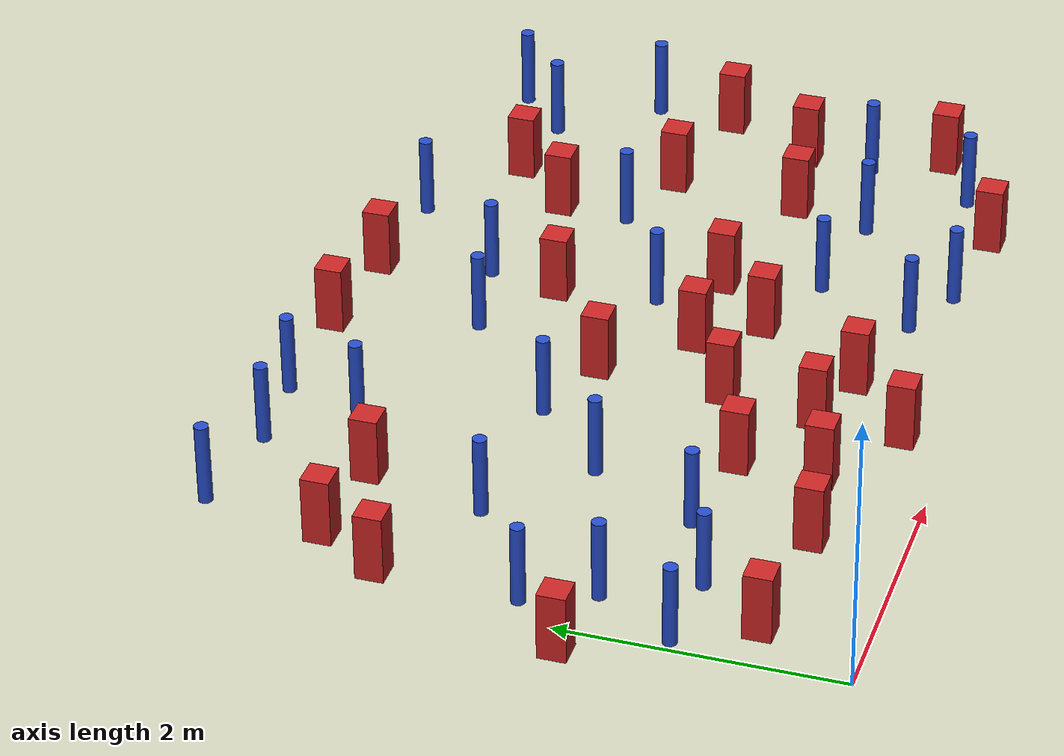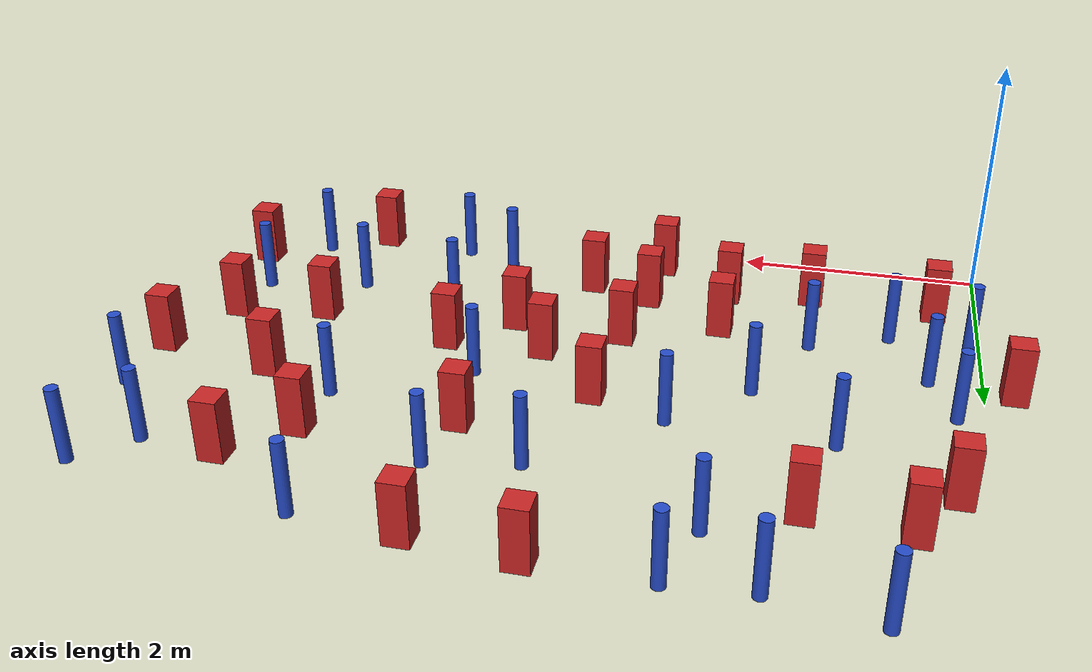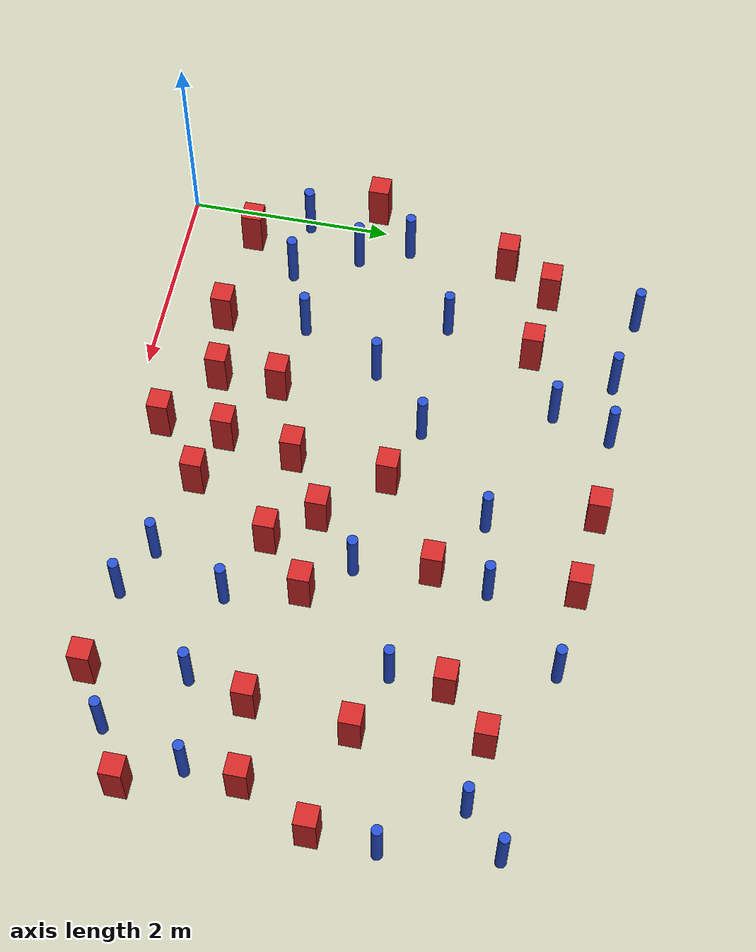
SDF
<sdf version="1.6">
 <model name="dense_74">
  <model name="square_post_obstacle5">
   <static>true</static>
   <pose>3.76848859604 4.4891068602 1.91545236811e-07 -7.35059704564e-06 1.12565212e-07 2.39332434364e-05</pose>
   <link name="link">
    <pose>0 0 0.25 0 -0 0</pose>
    <inertial>
     <mass>100</mass>
     <inertia>
      <ixx>0.166667</ixx>
      <ixy>0</ixy>
      <ixz>0</ixz>
      <iyy>0.166667</iyy>
      <iyz>0</iyz>
      <izz>0.166667</izz>
     </inertia>
    </inertial>
    <collision name="collision"><geometry><box><size>.2 .2 .5</size></box></geometry></collision>
    <visual name="visual">
     <geometry><box><size>.2 .2 .5</size></box></geometry>
     <material>
      <script><name>Gazebo/Red</name><uri>file://media/materials/scripts/gazebo.material</uri></script>
     </material>
    </visual>
   </link>
  </model>
  <model name="pole_obstacle11">
   <static>true</static>
   <pose>5.98170943575 3.84576997254 7.38925637345e-09 -8.47170692798e-08 1.24976764937e-08 -1.74513093023e-07</pose>
   <link name="link">
    <pose>0 0 0.3 0 -0 0</pose>
    <inertial>
     <mass>1</mass>
     <inertia><ixx>0.145833</ixx><ixy>0</ixy><ixz>0</ixz><iyy>0.145833</iyy><iyz>0</iyz><izz>0.125</izz></inertia>
    </inertial>
    <collision name="collision">
     <geometry><cylinder><radius>0.05</radius><length>.6</length></cylinder></geometry>
    </collision>
    <visual name="visual">
     <geometry><cylinder><radius>0.05</radius><length>.6</length></cylinder></geometry>
     <material>
      <script><name>Gazebo/Blue</name><uri>file://media/materials/scripts/gazebo.material</uri></script>
     </material>
    </visual>
   </link>
  </model>
  <model name="square_post_obstacle8">
   <static>true</static>
   <pose>0.52185416256 3.75010447684 1.91545236811e-07 -7.35059704564e-06 1.12565212e-07 2.39332434364e-05</pose>
   <link name="link">
    <pose>0 0 0.25 0 -0 0</pose>
    <inertial>
     <mass>100</mass>
     <inertia>
      <ixx>0.166667</ixx>
      <ixy>0</ixy>
      <ixz>0</ixz>
      <iyy>0.166667</iyy>
      <iyz>0</iyz>
      <izz>0.166667</izz>
     </inertia>
    </inertial>
    <collision name="collision"><geometry><box><size>.2 .2 .5</size></box></geometry></collision>
    <visual name="visual">
     <geometry><box><size>.2 .2 .5</size></box></geometry>
     <material>
      <script><name>Gazebo/Red</name><uri>file://media/materials/scripts/gazebo.material</uri></script>
     </material>
    </visual>
   </link>
  </model>
  <model name="square_post_obstacle13">
   <static>true</static>
   <pose>4.9184155626 3.47502278564 1.91545236811e-07 -7.35059704564e-06 1.12565212e-07 2.39332434364e-05</pose>
   <link name="link">
    <pose>0 0 0.25 0 -0 0</pose>
    <inertial>
     <mass>100</mass>
     <inertia>
      <ixx>0.166667</ixx>
      <ixy>0</ixy>
      <ixz>0</ixz>
      <iyy>0.166667</iyy>
      <iyz>0</iyz>
      <izz>0.166667</izz>
     </inertia>
    </inertial>
    <collision name="collision"><geometry><box><size>.2 .2 .5</size></box></geometry></collision>
    <visual name="visual">
     <geometry><box><size>.2 .2 .5</size></box></geometry>
     <material>
      <script><name>Gazebo/Red</name><uri>file://media/materials/scripts/gazebo.material</uri></script>
     </material>
    </visual>
   </link>
  </model>
  <model name="pole_obstacle20">
   <static>true</static>
   <pose>1.07378791365 2.82501604098 7.38925637345e-09 -8.47170692799e-08 1.24976765053e-08 -1.74513093017e-07</pose>
   <link name="link">
    <pose>0 0 0.3 0 -0 0</pose>
    <inertial>
     <mass>1</mass>
     <inertia><ixx>0.145833</ixx><ixy>0</ixy><ixz>0</ixz><iyy>0.145833</iyy><iyz>0</iyz><izz>0.125</izz></inertia>
    </inertial>
    <collision name="collision">
     <geometry><cylinder><radius>0.05</radius><length>.6</length></cylinder></geometry>
    </collision>
    <visual name="visual">
     <geometry><cylinder><radius>0.05</radius><length>.6</length></cylinder></geometry>
     <material>
      <script><name>Gazebo/Blue</name><uri>file://media/materials/scripts/gazebo.material</uri></script>
     </material>
    </visual>
   </link>
  </model>
  <model name="pole_obstacle25">
   <static>true</static>
   <pose>4.0653053094 0.614794969996 7.38925637345e-09 -8.47170692799e-08 1.24976765038e-08 -1.74513093018e-07</pose>
   <link name="link">
    <pose>0 0 0.3 0 -0 0</pose>
    <inertial>
     <mass>1</mass>
     <inertia><ixx>0.145833</ixx><ixy>0</ixy><ixz>0</ixz><iyy>0.145833</iyy><iyz>0</iyz><izz>0.125</izz></inertia>
    </inertial>
    <collision name="collision">
     <geometry><cylinder><radius>0.05</radius><length>.6</length></cylinder></geometry>
    </collision>
    <visual name="visual">
     <geometry><cylinder><radius>0.05</radius><length>.6</length></cylinder></geometry>
     <material>
      <script><name>Gazebo/Blue</name><uri>file://media/materials/scripts/gazebo.material</uri></script>
     </material>
    </visual>
   </link>
  </model>
  <model name="square_post_obstacle24">
   <static>true</static>
   <pose>0.238904374398 3.28265726536 1.91545236811e-07 -7.35059704564e-06 1.12565212e-07 2.39332434364e-05</pose>
   <link name="link">
    <pose>0 0 0.25 0 -0 0</pose>
    <inertial>
     <mass>100</mass>
     <inertia>
      <ixx>0.166667</ixx>
      <ixy>0</ixy>
      <ixz>0</ixz>
      <iyy>0.166667</iyy>
      <iyz>0</iyz>
      <izz>0.166667</izz>
     </inertia>
    </inertial>
    <collision name="collision"><geometry><box><size>.2 .2 .5</size></box></geometry></collision>
    <visual name="visual">
     <geometry><box><size>.2 .2 .5</size></box></geometry>
     <material>
      <script><name>Gazebo/Red</name><uri>file://media/materials/scripts/gazebo.material</uri></script>
     </material>
    </visual>
   </link>
  </model>
  <model name="pole_obstacle33">
   <static>true</static>
   <pose>3.89130578524 2.43610695451 7.38925637345e-09 -8.47170692798e-08 1.24976764939e-08 -1.74513093025e-07</pose>
   <link name="link">
    <pose>0 0 0.3 0 -0 0</pose>
    <inertial>
     <mass>1</mass>
     <inertia><ixx>0.145833</ixx><ixy>0</ixy><ixz>0</ixz><iyy>0.145833</iyy><iyz>0</iyz><izz>0.125</izz></inertia>
    </inertial>
    <collision name="collision">
     <geometry><cylinder><radius>0.05</radius><length>.6</length></cylinder></geometry>
    </collision>
    <visual name="visual">
     <geometry><cylinder><radius>0.05</radius><length>.6</length></cylinder></geometry>
     <material>
      <script><name>Gazebo/Blue</name><uri>file://media/materials/scripts/gazebo.material</uri></script>
     </material>
    </visual>
   </link>
  </model>
  <model name="pole_obstacle34">
   <static>true</static>
   <pose>3.20870922685 3.55319952448 7.38925637345e-09 -8.47170692798e-08 1.24976764939e-08 -1.74513093025e-07</pose>
   <link name="link">
    <pose>0 0 0.3 0 -0 0</pose>
    <inertial>
     <mass>1</mass>
     <inertia><ixx>0.145833</ixx><ixy>0</ixy><ixz>0</ixz><iyy>0.145833</iyy><iyz>0</iyz><izz>0.125</izz></inertia>
    </inertial>
    <collision name="collision">
     <geometry><cylinder><radius>0.05</radius><length>.6</length></cylinder></geometry>
    </collision>
    <visual name="visual">
     <geometry><cylinder><radius>0.05</radius><length>.6</length></cylinder></geometry>
     <material>
      <script><name>Gazebo/Blue</name><uri>file://media/materials/scripts/gazebo.material</uri></script>
     </material>
    </visual>
   </link>
  </model>
  <model name="square_post_obstacle39">
   <static>true</static>
   <pose>2.0872839718 0.744691946764 1.91545236811e-07 -7.35059704564e-06 1.12565212e-07 2.39332434364e-05</pose>
   <link name="link">
    <pose>0 0 0.25 0 -0 0</pose>
    <inertial>
     <mass>100</mass>
     <inertia>
      <ixx>0.166667</ixx>
      <ixy>0</ixy>
      <ixz>0</ixz>
      <iyy>0.166667</iyy>
      <iyz>0</iyz>
      <izz>0.166667</izz>
     </inertia>
    </inertial>
    <collision name="collision"><geometry><box><size>.2 .2 .5</size></box></geometry></collision>
    <visual name="visual">
     <geometry><box><size>.2 .2 .5</size></box></geometry>
     <material>
      <script><name>Gazebo/Red</name><uri>file://media/materials/scripts/gazebo.material</uri></script>
     </material>
    </visual>
   </link>
  </model>
  <model name="pole_obstacle56">
   <static>true</static>
   <pose>2.32313511469 2.78692863247 7.38925637345e-09 -8.47170692798e-08 1.24976764939e-08 -1.74513093025e-07</pose>
   <link name="link">
    <pose>0 0 0.3 0 -0 0</pose>
    <inertial>
     <mass>1</mass>
     <inertia><ixx>0.145833</ixx><ixy>0</ixy><ixz>0</ixz><iyy>0.145833</iyy><iyz>0</iyz><izz>0.125</izz></inertia>
    </inertial>
    <collision name="collision">
     <geometry><cylinder><radius>0.05</radius><length>.6</length></cylinder></geometry>
    </collision>
    <visual name="visual">
     <geometry><cylinder><radius>0.05</radius><length>.6</length></cylinder></geometry>
     <material>
      <script><name>Gazebo/Blue</name><uri>file://media/materials/scripts/gazebo.material</uri></script>
     </material>
    </visual>
   </link>
  </model>
  <model name="pole_obstacle57">
   <static>true</static>
   <pose>5.84016304088 0.595460943775 7.38925637345e-09 -8.47170692799e-08 1.24976765038e-08 -1.74513093018e-07</pose>
   <link name="link">
    <pose>0 0 0.3 0 -0 0</pose>
    <inertial>
     <mass>1</mass>
     <inertia><ixx>0.145833</ixx><ixy>0</ixy><ixz>0</ixz><iyy>0.145833</iyy><iyz>0</iyz><izz>0.125</izz></inertia>
    </inertial>
    <collision name="collision">
     <geometry><cylinder><radius>0.05</radius><length>.6</length></cylinder></geometry>
    </collision>
    <visual name="visual">
     <geometry><cylinder><radius>0.05</radius><length>.6</length></cylinder></geometry>
     <material>
      <script><name>Gazebo/Blue</name><uri>file://media/materials/scripts/gazebo.material</uri></script>
     </material>
    </visual>
   </link>
  </model>
  <model name="square_post_obstacle45">
   <static>true</static>
   <pose>2.95661262917 4.55752413526 1.91545236811e-07 -7.35059704564e-06 1.12565212e-07 2.39332434364e-05</pose>
   <link name="link">
    <pose>0 0 0.25 0 -0 0</pose>
    <inertial>
     <mass>100</mass>
     <inertia>
      <ixx>0.166667</ixx>
      <ixy>0</ixy>
      <ixz>0</ixz>
      <iyy>0.166667</iyy>
      <iyz>0</iyz>
      <izz>0.166667</izz>
     </inertia>
    </inertial>
    <collision name="collision"><geometry><box><size>.2 .2 .5</size></box></geometry></collision>
    <visual name="visual">
     <geometry><box><size>.2 .2 .5</size></box></geometry>
     <material>
      <script><name>Gazebo/Red</name><uri>file://media/materials/scripts/gazebo.material</uri></script>
     </material>
    </visual>
   </link>
  </model>
  <model name="pole_obstacle61">
   <static>true</static>
   <pose>2.0718901959 4.56500717576 7.38925637345e-09 -8.47170692798e-08 1.24976765033e-08 -1.74513093019e-07</pose>
   <link name="link">
    <pose>0 0 0.3 0 -0 0</pose>
    <inertial>
     <mass>1</mass>
     <inertia><ixx>0.145833</ixx><ixy>0</ixy><ixz>0</ixz><iyy>0.145833</iyy><iyz>0</iyz><izz>0.125</izz></inertia>
    </inertial>
    <collision name="collision">
     <geometry><cylinder><radius>0.05</radius><length>.6</length></cylinder></geometry>
    </collision>
    <visual name="visual">
     <geometry><cylinder><radius>0.05</radius><length>.6</length></cylinder></geometry>
     <material>
      <script><name>Gazebo/Blue</name><uri>file://media/materials/scripts/gazebo.material</uri></script>
     </material>
    </visual>
   </link>
  </model>
  <model name="square_post_obstacle47">
   <static>true</static>
   <pose>6.44515955463 2.56563916747 1.91545236811e-07 -7.35059704564e-06 1.12565212e-07 2.39332434364e-05</pose>
   <link name="link">
    <pose>0 0 0.25 0 -0 0</pose>
    <inertial>
     <mass>100</mass>
     <inertia>
      <ixx>0.166667</ixx>
      <ixy>0</ixy>
      <ixz>0</ixz>
      <iyy>0.166667</iyy>
      <iyz>0</iyz>
      <izz>0.166667</izz>
     </inertia>
    </inertial>
    <collision name="collision"><geometry><box><size>.2 .2 .5</size></box></geometry></collision>
    <visual name="visual">
     <geometry><box><size>.2 .2 .5</size></box></geometry>
     <material>
      <script><name>Gazebo/Red</name><uri>file://media/materials/scripts/gazebo.material</uri></script>
     </material>
    </visual>
   </link>
  </model>
  <model name="pole_obstacle62">
   <static>true</static>
   <pose>1.73914775702 2.23268547517 7.38925637345e-09 -8.47170692799e-08 1.24976765053e-08 -1.74513093017e-07</pose>
   <link name="link">
    <pose>0 0 0.3 0 -0 0</pose>
    <inertial>
     <mass>1</mass>
     <inertia><ixx>0.145833</ixx><ixy>0</ixy><ixz>0</ixz><iyy>0.145833</iyy><iyz>0</iyz><izz>0.125</izz></inertia>
    </inertial>
    <collision name="collision">
     <geometry><cylinder><radius>0.05</radius><length>.6</length></cylinder></geometry>
    </collision>
    <visual name="visual">
     <geometry><cylinder><radius>0.05</radius><length>.6</length></cylinder></geometry>
     <material>
      <script><name>Gazebo/Blue</name><uri>file://media/materials/scripts/gazebo.material</uri></script>
     </material>
    </visual>
   </link>
  </model>
  <model name="square_post_obstacle51">
   <static>true</static>
   <pose>6.3267004611 0.870570817498 1.91545236811e-07 -7.35059704564e-06 1.12565212e-07 2.39332434364e-05</pose>
   <link name="link">
    <pose>0 0 0.25 0 -0 0</pose>
    <inertial>
     <mass>100</mass>
     <inertia>
      <ixx>0.166667</ixx>
      <ixy>0</ixy>
      <ixz>0</ixz>
      <iyy>0.166667</iyy>
      <iyz>0</iyz>
      <izz>0.166667</izz>
     </inertia>
    </inertial>
    <collision name="collision"><geometry><box><size>.2 .2 .5</size></box></geometry></collision>
    <visual name="visual">
     <geometry><box><size>.2 .2 .5</size></box></geometry>
     <material>
      <script><name>Gazebo/Red</name><uri>file://media/materials/scripts/gazebo.material</uri></script>
     </material>
    </visual>
   </link>
  </model>
  <model name="square_post_obstacle58">
   <static>true</static>
   <pose>2.09149793155 1.33502182656 1.91545236811e-07 -7.35059704564e-06 1.12565212e-07 2.39332434364e-05</pose>
   <link name="link">
    <pose>0 0 0.25 0 -0 0</pose>
    <inertial>
     <mass>100</mass>
     <inertia>
      <ixx>0.166667</ixx>
      <ixy>0</ixy>
      <ixz>0</ixz>
      <iyy>0.166667</iyy>
      <iyz>0</iyz>
      <izz>0.166667</izz>
     </inertia>
    </inertial>
    <collision name="collision"><geometry><box><size>.2 .2 .5</size></box></geometry></collision>
    <visual name="visual">
     <geometry><box><size>.2 .2 .5</size></box></geometry>
     <material>
      <script><name>Gazebo/Red</name><uri>file://media/materials/scripts/gazebo.material</uri></script>
     </material>
    </visual>
   </link>
  </model>
  <model name="square_post_obstacle72">
   <static>true</static>
   <pose>5.34371566135 0.314402927189 1.91545236811e-07 -7.35059704564e-06 1.12565212e-07 2.39332434364e-05</pose>
   <link name="link">
    <pose>0 0 0.25 0 -0 0</pose>
    <inertial>
     <mass>100</mass>
     <inertia>
      <ixx>0.166667</ixx>
      <ixy>0</ixy>
      <ixz>0</ixz>
      <iyy>0.166667</iyy>
      <iyz>0</iyz>
      <izz>0.166667</izz>
     </inertia>
    </inertial>
    <collision name="collision"><geometry><box><size>.2 .2 .5</size></box></geometry></collision>
    <visual name="visual">
     <geometry><box><size>.2 .2 .5</size></box></geometry>
     <material>
      <script><name>Gazebo/Red</name><uri>file://media/materials/scripts/gazebo.material</uri></script>
     </material>
    </visual>
   </link>
  </model>
  <model name="pole_obstacle90">
   <static>true</static>
   <pose>6.49465895072 3.16985735413 7.38925637345e-09 -8.47170692798e-08 1.24976764937e-08 -1.74513093023e-07</pose>
   <link name="link">
    <pose>0 0 0.3 0 -0 0</pose>
    <inertial>
     <mass>1</mass>
     <inertia><ixx>0.145833</ixx><ixy>0</ixy><ixz>0</ixz><iyy>0.145833</iyy><iyz>0</iyz><izz>0.125</izz></inertia>
    </inertial>
    <collision name="collision">
     <geometry><cylinder><radius>0.05</radius><length>.6</length></cylinder></geometry>
    </collision>
    <visual name="visual">
     <geometry><cylinder><radius>0.05</radius><length>.6</length></cylinder></geometry>
     <material>
      <script><name>Gazebo/Blue</name><uri>file://media/materials/scripts/gazebo.material</uri></script>
     </material>
    </visual>
   </link>
  </model>
  <model name="pole_obstacle91">
   <static>true</static>
   <pose>1.89550026319 3.99637170486 7.38925637345e-09 -8.47170692799e-08 1.24976765077e-08 -1.74513093019e-07</pose>
   <link name="link">
    <pose>0 0 0.3 0 -0 0</pose>
    <inertial>
     <mass>1</mass>
     <inertia><ixx>0.145833</ixx><ixy>0</ixy><ixz>0</ixz><iyy>0.145833</iyy><iyz>0</iyz><izz>0.125</izz></inertia>
    </inertial>
    <collision name="collision">
     <geometry><cylinder><radius>0.05</radius><length>.6</length></cylinder></geometry>
    </collision>
    <visual name="visual">
     <geometry><cylinder><radius>0.05</radius><length>.6</length></cylinder></geometry>
     <material>
      <script><name>Gazebo/Blue</name><uri>file://media/materials/scripts/gazebo.material</uri></script>
     </material>
    </visual>
   </link>
  </model>
  <model name="square_post_obstacle90">
   <static>true</static>
   <pose>1.38463902411 0.631518554903 1.91545236811e-07 -7.35059704564e-06 1.12565212e-07 2.39332434364e-05</pose>
   <link name="link">
    <pose>0 0 0.25 0 -0 0</pose>
    <inertial>
     <mass>100</mass>
     <inertia>
      <ixx>0.166667</ixx>
      <ixy>0</ixy>
      <ixz>0</ixz>
      <iyy>0.166667</iyy>
      <iyz>0</iyz>
      <izz>0.166667</izz>
     </inertia>
    </inertial>
    <collision name="collision"><geometry><box><size>.2 .2 .5</size></box></geometry></collision>
    <visual name="visual">
     <geometry><box><size>.2 .2 .5</size></box></geometry>
     <material>
      <script><name>Gazebo/Red</name><uri>file://media/materials/scripts/gazebo.material</uri></script>
     </material>
    </visual>
   </link>
  </model>
  <model name="pole_obstacle101">
   <static>true</static>
   <pose>0.676264296835 4.63743167553 7.38925637345e-09 -8.471706928e-08 1.24976765086e-08 -1.74513093015e-07</pose>
   <link name="link">
    <pose>0 0 0.3 0 -0 0</pose>
    <inertial>
     <mass>1</mass>
     <inertia><ixx>0.145833</ixx><ixy>0</ixy><ixz>0</ixz><iyy>0.145833</iyy><iyz>0</iyz><izz>0.125</izz></inertia>
    </inertial>
    <collision name="collision">
     <geometry><cylinder><radius>0.05</radius><length>.6</length></cylinder></geometry>
    </collision>
    <visual name="visual">
     <geometry><cylinder><radius>0.05</radius><length>.6</length></cylinder></geometry>
     <material>
      <script><name>Gazebo/Blue</name><uri>file://media/materials/scripts/gazebo.material</uri></script>
     </material>
    </visual>
   </link>
  </model>
  <model name="square_post_obstacle94">
   <static>true</static>
   <pose>2.92326156692 2.57454246252 1.91545236811e-07 -7.35059704564e-06 1.12565212e-07 2.39332434364e-05</pose>
   <link name="link">
    <pose>0 0 0.25 0 -0 0</pose>
    <inertial>
     <mass>100</mass>
     <inertia>
      <ixx>0.166667</ixx>
      <ixy>0</ixy>
      <ixz>0</ixz>
      <iyy>0.166667</iyy>
      <iyz>0</iyz>
      <izz>0.166667</izz>
     </inertia>
    </inertial>
    <collision name="collision"><geometry><box><size>.2 .2 .5</size></box></geometry></collision>
    <visual name="visual">
     <geometry><box><size>.2 .2 .5</size></box></geometry>
     <material>
      <script><name>Gazebo/Red</name><uri>file://media/materials/scripts/gazebo.material</uri></script>
     </material>
    </visual>
   </link>
  </model>
  <model name="pole_obstacle103">
   <static>true</static>
   <pose>3.90346842931 3.68673108118 7.38925637345e-09 -8.47170692798e-08 1.24976764939e-08 -1.74513093025e-07</pose>
   <link name="link">
    <pose>0 0 0.3 0 -0 0</pose>
    <inertial>
     <mass>1</mass>
     <inertia><ixx>0.145833</ixx><ixy>0</ixy><ixz>0</ixz><iyy>0.145833</iyy><iyz>0</iyz><izz>0.125</izz></inertia>
    </inertial>
    <collision name="collision">
     <geometry><cylinder><radius>0.05</radius><length>.6</length></cylinder></geometry>
    </collision>
    <visual name="visual">
     <geometry><cylinder><radius>0.05</radius><length>.6</length></cylinder></geometry>
     <material>
      <script><name>Gazebo/Blue</name><uri>file://media/materials/scripts/gazebo.material</uri></script>
     </material>
    </visual>
   </link>
  </model>
  <model name="square_post_obstacle104">
   <static>true</static>
   <pose>-0.218262979756 1.88934912733 1.91545236811e-07 -7.35059704564e-06 1.12565212e-07 2.39332434364e-05</pose>
   <link name="link">
    <pose>0 0 0.25 0 -0 0</pose>
    <inertial>
     <mass>100</mass>
     <inertia>
      <ixx>0.166667</ixx>
      <ixy>0</ixy>
      <ixz>0</ixz>
      <iyy>0.166667</iyy>
      <iyz>0</iyz>
      <izz>0.166667</izz>
     </inertia>
    </inertial>
    <collision name="collision"><geometry><box><size>.2 .2 .5</size></box></geometry></collision>
    <visual name="visual">
     <geometry><box><size>.2 .2 .5</size></box></geometry>
     <material>
      <script><name>Gazebo/Red</name><uri>file://media/materials/scripts/gazebo.material</uri></script>
     </material>
    </visual>
   </link>
  </model>
  <model name="square_post_obstacle105">
   <static>true</static>
   <pose>4.23063205569 2.02970875541 1.91545236811e-07 -7.35059704564e-06 1.12565212e-07 2.39332434364e-05</pose>
   <link name="link">
    <pose>0 0 0.25 0 -0 0</pose>
    <inertial>
     <mass>100</mass>
     <inertia>
      <ixx>0.166667</ixx>
      <ixy>0</ixy>
      <ixz>0</ixz>
      <iyy>0.166667</iyy>
      <iyz>0</iyz>
      <izz>0.166667</izz>
     </inertia>
    </inertial>
    <collision name="collision"><geometry><box><size>.2 .2 .5</size></box></geometry></collision>
    <visual name="visual">
     <geometry><box><size>.2 .2 .5</size></box></geometry>
     <material>
      <script><name>Gazebo/Red</name><uri>file://media/materials/scripts/gazebo.material</uri></script>
     </material>
    </visual>
   </link>
  </model>
  <model name="pole_obstacle119">
   <static>true</static>
   <pose>0.71744221245 1.18059784992 7.38925637345e-09 -8.47170692799e-08 1.24976765033e-08 -1.7451309302e-07</pose>
   <link name="link">
    <pose>0 0 0.3 0 -0 0</pose>
    <inertial>
     <mass>1</mass>
     <inertia><ixx>0.145833</ixx><ixy>0</ixy><ixz>0</ixz><iyy>0.145833</iyy><iyz>0</iyz><izz>0.125</izz></inertia>
    </inertial>
    <collision name="collision">
     <geometry><cylinder><radius>0.05</radius><length>.6</length></cylinder></geometry>
    </collision>
    <visual name="visual">
     <geometry><cylinder><radius>0.05</radius><length>.6</length></cylinder></geometry>
     <material>
      <script><name>Gazebo/Blue</name><uri>file://media/materials/scripts/gazebo.material</uri></script>
     </material>
    </visual>
   </link>
  </model>
  <model name="square_post_obstacle122">
   <static>true</static>
   <pose>2.85578624254 1.65003106752 1.91545236811e-07 -7.35059704564e-06 1.12565212e-07 2.39332434364e-05</pose>
   <link name="link">
    <pose>0 0 0.25 0 -0 0</pose>
    <inertial>
     <mass>100</mass>
     <inertia>
      <ixx>0.166667</ixx>
      <ixy>0</ixy>
      <ixz>0</ixz>
      <iyy>0.166667</iyy>
      <iyz>0</iyz>
      <izz>0.166667</izz>
     </inertia>
    </inertial>
    <collision name="collision"><geometry><box><size>.2 .2 .5</size></box></geometry></collision>
    <visual name="visual">
     <geometry><box><size>.2 .2 .5</size></box></geometry>
     <material>
      <script><name>Gazebo/Red</name><uri>file://media/materials/scripts/gazebo.material</uri></script>
     </material>
    </visual>
   </link>
  </model>
  <model name="pole_obstacle133">
   <static>true</static>
   <pose>0.212949581749 2.28273336041 7.38925637345e-09 -8.47170692792e-08 1.24976764352e-08 -1.74513093043e-07</pose>
   <link name="link">
    <pose>0 0 0.3 0 -0 0</pose>
    <inertial>
     <mass>1</mass>
     <inertia><ixx>0.145833</ixx><ixy>0</ixy><ixz>0</ixz><iyy>0.145833</iyy><iyz>0</iyz><izz>0.125</izz></inertia>
    </inertial>
    <collision name="collision">
     <geometry><cylinder><radius>0.05</radius><length>.6</length></cylinder></geometry>
    </collision>
    <visual name="visual">
     <geometry><cylinder><radius>0.05</radius><length>.6</length></cylinder></geometry>
     <material>
      <script><name>Gazebo/Blue</name><uri>file://media/materials/scripts/gazebo.material</uri></script>
     </material>
    </visual>
   </link>
  </model>
  <model name="pole_obstacle137">
   <static>true</static>
   <pose>4.5914960539 4.42372862276 7.38925637345e-09 -8.47170692796e-08 1.24976764786e-08 -1.74513093032e-07</pose>
   <link name="link">
    <pose>0 0 0.3 0 -0 0</pose>
    <inertial>
     <mass>1</mass>
     <inertia><ixx>0.145833</ixx><ixy>0</ixy><ixz>0</ixz><iyy>0.145833</iyy><iyz>0</iyz><izz>0.125</izz></inertia>
    </inertial>
    <collision name="collision">
     <geometry><cylinder><radius>0.05</radius><length>.6</length></cylinder></geometry>
    </collision>
    <visual name="visual">
     <geometry><cylinder><radius>0.05</radius><length>.6</length></cylinder></geometry>
     <material>
      <script><name>Gazebo/Blue</name><uri>file://media/materials/scripts/gazebo.material</uri></script>
     </material>
    </visual>
   </link>
  </model>
  <model name="pole_obstacle138">
   <static>true</static>
   <pose>6.08892014235 1.39327032241 7.38925637345e-09 -8.471706928e-08 1.24976765134e-08 -1.74513093015e-07</pose>
   <link name="link">
    <pose>0 0 0.3 0 -0 0</pose>
    <inertial>
     <mass>1</mass>
     <inertia><ixx>0.145833</ixx><ixy>0</ixy><ixz>0</ixz><iyy>0.145833</iyy><iyz>0</iyz><izz>0.125</izz></inertia>
    </inertial>
    <collision name="collision">
     <geometry><cylinder><radius>0.05</radius><length>.6</length></cylinder></geometry>
    </collision>
    <visual name="visual">
     <geometry><cylinder><radius>0.05</radius><length>.6</length></cylinder></geometry>
     <material>
      <script><name>Gazebo/Blue</name><uri>file://media/materials/scripts/gazebo.material</uri></script>
     </material>
    </visual>
   </link>
  </model>
  <model name="square_post_obstacle140">
   <static>true</static>
   <pose>3.75969727362 1.60152543352 1.91545236811e-07 -7.35059704564e-06 1.12565212e-07 2.39332434364e-05</pose>
   <link name="link">
    <pose>0 0 0.25 0 -0 0</pose>
    <inertial>
     <mass>100</mass>
     <inertia>
      <ixx>0.166667</ixx>
      <ixy>0</ixy>
      <ixz>0</ixz>
      <iyy>0.166667</iyy>
      <iyz>0</iyz>
      <izz>0.166667</izz>
     </inertia>
    </inertial>
    <collision name="collision"><geometry><box><size>.2 .2 .5</size></box></geometry></collision>
    <visual name="visual">
     <geometry><box><size>.2 .2 .5</size></box></geometry>
     <material>
      <script><name>Gazebo/Red</name><uri>file://media/materials/scripts/gazebo.material</uri></script>
     </material>
    </visual>
   </link>
  </model>
  <model name="pole_obstacle149">
   <static>true</static>
   <pose>6.35868620334 4.20468824969 7.38925637345e-09 -8.47170692796e-08 1.24976764786e-08 -1.74513093032e-07</pose>
   <link name="link">
    <pose>0 0 0.3 0 -0 0</pose>
    <inertial>
     <mass>1</mass>
     <inertia><ixx>0.145833</ixx><ixy>0</ixy><ixz>0</ixz><iyy>0.145833</iyy><iyz>0</iyz><izz>0.125</izz></inertia>
    </inertial>
    <collision name="collision">
     <geometry><cylinder><radius>0.05</radius><length>.6</length></cylinder></geometry>
    </collision>
    <visual name="visual">
     <geometry><cylinder><radius>0.05</radius><length>.6</length></cylinder></geometry>
     <material>
      <script><name>Gazebo/Blue</name><uri>file://media/materials/scripts/gazebo.material</uri></script>
     </material>
    </visual>
   </link>
  </model>
  <model name="pole_obstacle151">
   <static>true</static>
   <pose>5.25033770589 1.22348768476 7.38925637345e-09 -8.471706928e-08 1.24976765134e-08 -1.74513093015e-07</pose>
   <link name="link">
    <pose>0 0 0.3 0 -0 0</pose>
    <inertial>
     <mass>1</mass>
     <inertia><ixx>0.145833</ixx><ixy>0</ixy><ixz>0</ixz><iyy>0.145833</iyy><iyz>0</iyz><izz>0.125</izz></inertia>
    </inertial>
    <collision name="collision">
     <geometry><cylinder><radius>0.05</radius><length>.6</length></cylinder></geometry>
    </collision>
    <visual name="visual">
     <geometry><cylinder><radius>0.05</radius><length>.6</length></cylinder></geometry>
     <material>
      <script><name>Gazebo/Blue</name><uri>file://media/materials/scripts/gazebo.material</uri></script>
     </material>
    </visual>
   </link>
  </model>
  <model name="square_post_obstacle147">
   <static>true</static>
   <pose>3.80060602181 3.154602734 1.91545236811e-07 -7.35059704564e-06 1.12565212e-07 2.39332434364e-05</pose>
   <link name="link">
    <pose>0 0 0.25 0 -0 0</pose>
    <inertial>
     <mass>100</mass>
     <inertia>
      <ixx>0.166667</ixx>
      <ixy>0</ixy>
      <ixz>0</ixz>
      <iyy>0.166667</iyy>
      <iyz>0</iyz>
      <izz>0.166667</izz>
     </inertia>
    </inertial>
    <collision name="collision"><geometry><box><size>.2 .2 .5</size></box></geometry></collision>
    <visual name="visual">
     <geometry><box><size>.2 .2 .5</size></box></geometry>
     <material>
      <script><name>Gazebo/Red</name><uri>file://media/materials/scripts/gazebo.material</uri></script>
     </material>
    </visual>
   </link>
  </model>
  <model name="square_post_obstacle152">
   <static>true</static>
   <pose>5.3552346419 3.90536591982 1.91545236811e-07 -7.35059704564e-06 1.12565212e-07 2.39332434364e-05</pose>
   <link name="link">
    <pose>0 0 0.25 0 -0 0</pose>
    <inertial>
     <mass>100</mass>
     <inertia>
      <ixx>0.166667</ixx>
      <ixy>0</ixy>
      <ixz>0</ixz>
      <iyy>0.166667</iyy>
      <iyz>0</iyz>
      <izz>0.166667</izz>
     </inertia>
    </inertial>
    <collision name="collision"><geometry><box><size>.2 .2 .5</size></box></geometry></collision>
    <visual name="visual">
     <geometry><box><size>.2 .2 .5</size></box></geometry>
     <material>
      <script><name>Gazebo/Red</name><uri>file://media/materials/scripts/gazebo.material</uri></script>
     </material>
    </visual>
   </link>
  </model>
  <model name="pole_obstacle161">
   <static>true</static>
   <pose>4.39848932292 1.34034559362 7.38925637345e-09 -8.471706928e-08 1.24976765134e-08 -1.74513093015e-07</pose>
   <link name="link">
    <pose>0 0 0.3 0 -0 0</pose>
    <inertial>
     <mass>1</mass>
     <inertia><ixx>0.145833</ixx><ixy>0</ixy><ixz>0</ixz><iyy>0.145833</iyy><iyz>0</iyz><izz>0.125</izz></inertia>
    </inertial>
    <collision name="collision">
     <geometry><cylinder><radius>0.05</radius><length>.6</length></cylinder></geometry>
    </collision>
    <visual name="visual">
     <geometry><cylinder><radius>0.05</radius><length>.6</length></cylinder></geometry>
     <material>
      <script><name>Gazebo/Blue</name><uri>file://media/materials/scripts/gazebo.material</uri></script>
     </material>
    </visual>
   </link>
  </model>
  <model name="pole_obstacle166">
   <static>true</static>
   <pose>4.88224303579 2.96250336445 7.38925637345e-09 -8.47170692798e-08 1.24976764937e-08 -1.74513093023e-07</pose>
   <link name="link">
    <pose>0 0 0.3 0 -0 0</pose>
    <inertial>
     <mass>1</mass>
     <inertia><ixx>0.145833</ixx><ixy>0</ixy><ixz>0</ixz><iyy>0.145833</iyy><iyz>0</iyz><izz>0.125</izz></inertia>
    </inertial>
    <collision name="collision">
     <geometry><cylinder><radius>0.05</radius><length>.6</length></cylinder></geometry>
    </collision>
    <visual name="visual">
     <geometry><cylinder><radius>0.05</radius><length>.6</length></cylinder></geometry>
     <material>
      <script><name>Gazebo/Blue</name><uri>file://media/materials/scripts/gazebo.material</uri></script>
     </material>
    </visual>
   </link>
  </model>
  <model name="square_post_obstacle165">
   <static>true</static>
   <pose>2.70637586251 0.334127027527 1.91545236811e-07 -7.35059704564e-06 1.12565212e-07 2.39332434364e-05</pose>
   <link name="link">
    <pose>0 0 0.25 0 -0 0</pose>
    <inertial>
     <mass>100</mass>
     <inertia>
      <ixx>0.166667</ixx>
      <ixy>0</ixy>
      <ixz>0</ixz>
      <iyy>0.166667</iyy>
      <iyz>0</iyz>
      <izz>0.166667</izz>
     </inertia>
    </inertial>
    <collision name="collision"><geometry><box><size>.2 .2 .5</size></box></geometry></collision>
    <visual name="visual">
     <geometry><box><size>.2 .2 .5</size></box></geometry>
     <material>
      <script><name>Gazebo/Red</name><uri>file://media/materials/scripts/gazebo.material</uri></script>
     </material>
    </visual>
   </link>
  </model>
  <model name="square_post_obstacle167">
   <static>true</static>
   <pose>3.26192222562 0.797247877738 1.91545236811e-07 -7.35059704564e-06 1.12565212e-07 2.39332434364e-05</pose>
   <link name="link">
    <pose>0 0 0.25 0 -0 0</pose>
    <inertial>
     <mass>100</mass>
     <inertia>
      <ixx>0.166667</ixx>
      <ixy>0</ixy>
      <ixz>0</ixz>
      <iyy>0.166667</iyy>
      <iyz>0</iyz>
      <izz>0.166667</izz>
     </inertia>
    </inertial>
    <collision name="collision"><geometry><box><size>.2 .2 .5</size></box></geometry></collision>
    <visual name="visual">
     <geometry><box><size>.2 .2 .5</size></box></geometry>
     <material>
      <script><name>Gazebo/Red</name><uri>file://media/materials/scripts/gazebo.material</uri></script>
     </material>
    </visual>
   </link>
  </model>
  <model name="pole_obstacle169">
   <static>true</static>
   <pose>0.414229906088 1.79660637427 7.38925637345e-09 -8.47170692798e-08 1.24976765025e-08 -1.74513093018e-07</pose>
   <link name="link">
    <pose>0 0 0.3 0 -0 0</pose>
    <inertial>
     <mass>1</mass>
     <inertia><ixx>0.145833</ixx><ixy>0</ixy><ixz>0</ixz><iyy>0.145833</iyy><iyz>0</iyz><izz>0.125</izz></inertia>
    </inertial>
    <collision name="collision">
     <geometry><cylinder><radius>0.05</radius><length>.6</length></cylinder></geometry>
    </collision>
    <visual name="visual">
     <geometry><cylinder><radius>0.05</radius><length>.6</length></cylinder></geometry>
     <material>
      <script><name>Gazebo/Blue</name><uri>file://media/materials/scripts/gazebo.material</uri></script>
     </material>
    </visual>
   </link>
  </model>
  <model name="pole_obstacle173">
   <static>true</static>
   <pose>0.0855450561321 1.2221683417 7.38925637345e-09 -8.47170692799e-08 1.24976765001e-08 -1.74513093021e-07</pose>
   <link name="link">
    <pose>0 0 0.3 0 -0 0</pose>
    <inertial>
     <mass>1</mass>
     <inertia><ixx>0.145833</ixx><ixy>0</ixy><ixz>0</ixz><iyy>0.145833</iyy><iyz>0</iyz><izz>0.125</izz></inertia>
    </inertial>
    <collision name="collision">
     <geometry><cylinder><radius>0.05</radius><length>.6</length></cylinder></geometry>
    </collision>
    <visual name="visual">
     <geometry><cylinder><radius>0.05</radius><length>.6</length></cylinder></geometry>
     <material>
      <script><name>Gazebo/Blue</name><uri>file://media/materials/scripts/gazebo.material</uri></script>
     </material>
    </visual>
   </link>
  </model>
  <model name="square_post_obstacle173">
   <static>true</static>
   <pose>1.26928763158 3.68544319764 1.91545236811e-07 -7.35059704564e-06 1.12565212e-07 2.39332434364e-05</pose>
   <link name="link">
    <pose>0 0 0.25 0 -0 0</pose>
    <inertial>
     <mass>100</mass>
     <inertia>
      <ixx>0.166667</ixx>
      <ixy>0</ixy>
      <ixz>0</ixz>
      <iyy>0.166667</iyy>
      <iyz>0</iyz>
      <izz>0.166667</izz>
     </inertia>
    </inertial>
    <collision name="collision"><geometry><box><size>.2 .2 .5</size></box></geometry></collision>
    <visual name="visual">
     <geometry><box><size>.2 .2 .5</size></box></geometry>
     <material>
      <script><name>Gazebo/Red</name><uri>file://media/materials/scripts/gazebo.material</uri></script>
     </material>
    </visual>
   </link>
  </model>
  <model name="square_post_obstacle174">
   <static>true</static>
   <pose>6.12857184844 1.90201946907 1.91545236811e-07 -7.35059704564e-06 1.12565212e-07 2.39332434364e-05</pose>
   <link name="link">
    <pose>0 0 0.25 0 -0 0</pose>
    <inertial>
     <mass>100</mass>
     <inertia>
      <ixx>0.166667</ixx>
      <ixy>0</ixy>
      <ixz>0</ixz>
      <iyy>0.166667</iyy>
      <iyz>0</iyz>
      <izz>0.166667</izz>
     </inertia>
    </inertial>
    <collision name="collision"><geometry><box><size>.2 .2 .5</size></box></geometry></collision>
    <visual name="visual">
     <geometry><box><size>.2 .2 .5</size></box></geometry>
     <material>
      <script><name>Gazebo/Red</name><uri>file://media/materials/scripts/gazebo.material</uri></script>
     </material>
    </visual>
   </link>
  </model>
  <model name="square_post_obstacle188">
   <static>true</static>
   <pose>0.355249853301 0.69731013702 1.91545236811e-07 -7.35059704564e-06 1.12565212e-07 2.39332434364e-05</pose>
   <link name="link">
    <pose>0 0 0.25 0 -0 0</pose>
    <inertial>
     <mass>100</mass>
     <inertia>
      <ixx>0.166667</ixx>
      <ixy>0</ixy>
      <ixz>0</ixz>
      <iyy>0.166667</iyy>
      <iyz>0</iyz>
      <izz>0.166667</izz>
     </inertia>
    </inertial>
    <collision name="collision"><geometry><box><size>.2 .2 .5</size></box></geometry></collision>
    <visual name="visual">
     <geometry><box><size>.2 .2 .5</size></box></geometry>
     <material>
      <script><name>Gazebo/Red</name><uri>file://media/materials/scripts/gazebo.material</uri></script>
     </material>
    </visual>
   </link>
  </model>
  <model name="pole_obstacle188">
   <static>true</static>
   <pose>1.35274960107 1.44518753696 7.38925637345e-09 -8.471706928e-08 1.24976765079e-08 -1.74513093017e-07</pose>
   <link name="link">
    <pose>0 0 0.3 0 -0 0</pose>
    <inertial>
     <mass>1</mass>
     <inertia><ixx>0.145833</ixx><ixy>0</ixy><ixz>0</ixz><iyy>0.145833</iyy><iyz>0</iyz><izz>0.125</izz></inertia>
    </inertial>
    <collision name="collision">
     <geometry><cylinder><radius>0.05</radius><length>.6</length></cylinder></geometry>
    </collision>
    <visual name="visual">
     <geometry><cylinder><radius>0.05</radius><length>.6</length></cylinder></geometry>
     <material>
      <script><name>Gazebo/Blue</name><uri>file://media/materials/scripts/gazebo.material</uri></script>
     </material>
    </visual>
   </link>
  </model>
  <model name="square_post_obstacle204">
   <static>true</static>
   <pose>2.74732728718 0.962908731315 1.91545236811e-07 -7.35059704564e-06 1.12565212e-07 2.39332434364e-05</pose>
   <link name="link">
    <pose>0 0 0.25 0 -0 0</pose>
    <inertial>
     <mass>100</mass>
     <inertia>
      <ixx>0.166667</ixx>
      <ixy>0</ixy>
      <ixz>0</ixz>
      <iyy>0.166667</iyy>
      <iyz>0</iyz>
      <izz>0.166667</izz>
     </inertia>
    </inertial>
    <collision name="collision"><geometry><box><size>.2 .2 .5</size></box></geometry></collision>
    <visual name="visual">
     <geometry><box><size>.2 .2 .5</size></box></geometry>
     <material>
      <script><name>Gazebo/Red</name><uri>file://media/materials/scripts/gazebo.material</uri></script>
     </material>
    </visual>
   </link>
  </model>
  <model name="pole_obstacle196">
   <static>true</static>
   <pose>4.53061387324 0.396175859813 7.38925637345e-09 -8.47170692798e-08 1.24976765003e-08 -1.7451309302e-07</pose>
   <link name="link">
    <pose>0 0 0.3 0 -0 0</pose>
    <inertial>
     <mass>1</mass>
     <inertia><ixx>0.145833</ixx><ixy>0</ixy><ixz>0</ixz><iyy>0.145833</iyy><iyz>0</iyz><izz>0.125</izz></inertia>
    </inertial>
    <collision name="collision">
     <geometry><cylinder><radius>0.05</radius><length>.6</length></cylinder></geometry>
    </collision>
    <visual name="visual">
     <geometry><cylinder><radius>0.05</radius><length>.6</length></cylinder></geometry>
     <material>
      <script><name>Gazebo/Blue</name><uri>file://media/materials/scripts/gazebo.material</uri></script>
     </material>
    </visual>
   </link>
  </model>
  <model name="pole_obstacle203">
   <static>true</static>
   <pose>1.45637993662 4.5192764202 7.38925637345e-09 -8.47170692799e-08 1.24976765033e-08 -1.74513093018e-07</pose>
   <link name="link">
    <pose>0 0 0.3 0 -0 0</pose>
    <inertial>
     <mass>1</mass>
     <inertia><ixx>0.145833</ixx><ixy>0</ixy><ixz>0</ixz><iyy>0.145833</iyy><iyz>0</iyz><izz>0.125</izz></inertia>
    </inertial>
    <collision name="collision">
     <geometry><cylinder><radius>0.05</radius><length>.6</length></cylinder></geometry>
    </collision>
    <visual name="visual">
     <geometry><cylinder><radius>0.05</radius><length>.6</length></cylinder></geometry>
     <material>
      <script><name>Gazebo/Blue</name><uri>file://media/materials/scripts/gazebo.material</uri></script>
     </material>
    </visual>
   </link>
  </model>
  <model name="square_post_obstacle211">
   <static>true</static>
   <pose>3.43615733837 2.01664340843 1.91545236811e-07 -7.35059704564e-06 1.12565212e-07 2.39332434364e-05</pose>
   <link name="link">
    <pose>0 0 0.25 0 -0 0</pose>
    <inertial>
     <mass>100</mass>
     <inertia>
      <ixx>0.166667</ixx>
      <ixy>0</ixy>
      <ixz>0</ixz>
      <iyy>0.166667</iyy>
      <iyz>0</iyz>
      <izz>0.166667</izz>
     </inertia>
    </inertial>
    <collision name="collision"><geometry><box><size>.2 .2 .5</size></box></geometry></collision>
    <visual name="visual">
     <geometry><box><size>.2 .2 .5</size></box></geometry>
     <material>
      <script><name>Gazebo/Red</name><uri>file://media/materials/scripts/gazebo.material</uri></script>
     </material>
    </visual>
   </link>
  </model>
  <model name="square_post_obstacle212">
   <static>true</static>
   <pose>5.48576802967 2.74861694488 1.91545236811e-07 -7.35059704564e-06 1.12565212e-07 2.39332434364e-05</pose>
   <link name="link">
    <pose>0 0 0.25 0 -0 0</pose>
    <inertial>
     <mass>100</mass>
     <inertia>
      <ixx>0.166667</ixx>
      <ixy>0</ixy>
      <ixz>0</ixz>
      <iyy>0.166667</iyy>
      <iyz>0</iyz>
      <izz>0.166667</izz>
     </inertia>
    </inertial>
    <collision name="collision"><geometry><box><size>.2 .2 .5</size></box></geometry></collision>
    <visual name="visual">
     <geometry><box><size>.2 .2 .5</size></box></geometry>
     <material>
      <script><name>Gazebo/Red</name><uri>file://media/materials/scripts/gazebo.material</uri></script>
     </material>
    </visual>
   </link>
  </model>
  <model name="square_post_obstacle215">
   <static>true</static>
   <pose>5.39189274702 1.7872213277 1.91545236811e-07 -7.35059704564e-06 1.12565212e-07 2.39332434364e-05</pose>
   <link name="link">
    <pose>0 0 0.25 0 -0 0</pose>
    <inertial>
     <mass>100</mass>
     <inertia>
      <ixx>0.166667</ixx>
      <ixy>0</ixy>
      <ixz>0</ixz>
      <iyy>0.166667</iyy>
      <iyz>0</iyz>
      <izz>0.166667</izz>
     </inertia>
    </inertial>
    <collision name="collision"><geometry><box><size>.2 .2 .5</size></box></geometry></collision>
    <visual name="visual">
     <geometry><box><size>.2 .2 .5</size></box></geometry>
     <material>
      <script><name>Gazebo/Red</name><uri>file://media/materials/scripts/gazebo.material</uri></script>
     </material>
    </visual>
   </link>
  </model>
 </model>
</sdf>
